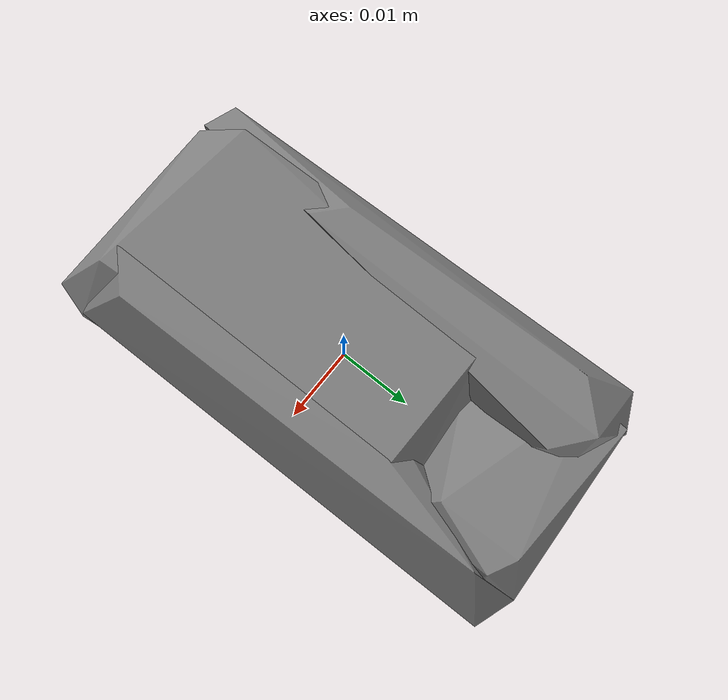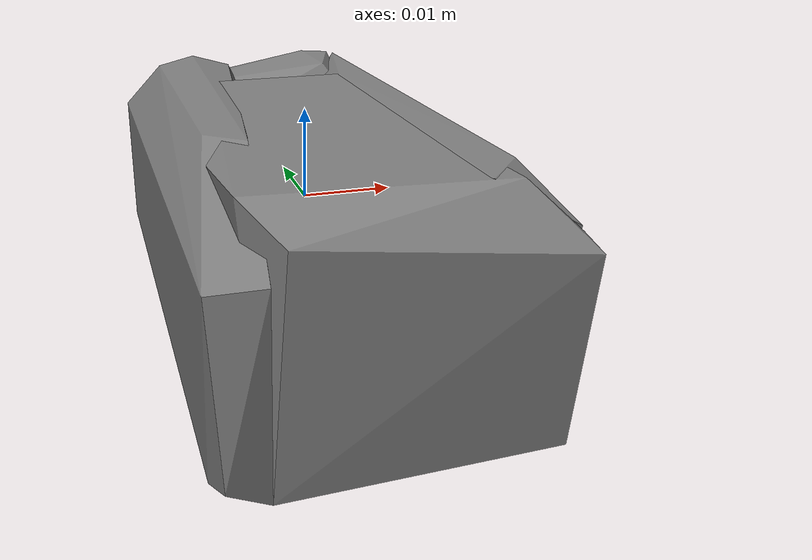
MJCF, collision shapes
<mujoco model="c_lego_duplo">
  <compiler angle="radian" />

  <asset>
    <mesh name="c_lego_duplo_visual_mesh" file="c_lego_duplo/textured.obj" />
    <mesh name="c_lego_duplo_collision_mesh_0" file="c_lego_duplo/textured_coacd_0.stl" />
    <mesh name="c_lego_duplo_collision_mesh_1" file="c_lego_duplo/textured_coacd_1.stl" />
    <mesh name="c_lego_duplo_collision_mesh_2" file="c_lego_duplo/textured_coacd_2.stl" />
    <mesh name="c_lego_duplo_collision_mesh_3" file="c_lego_duplo/textured_coacd_3.stl" />
    <texture name="c_lego_duplo_texture" type="2d" file="c_lego_duplo/texture_map.png" />
    <material name="c_lego_duplo_material" texture="c_lego_duplo_texture" />
  </asset>

  <worldbody>
    <body name="c_lego_duplo" pos="0 0 0" euler="0 0 0">
      <freejoint name="c_lego_duplo_joint" />
      <geom name="c_lego_duplo_visual_geom" type="mesh" mesh="c_lego_duplo_visual_mesh" material="c_lego_duplo_material" pos="0.013173349121726697 0.022850899210760046 -0.012672119612308666" euler="0 0 0" contype="0" conaffinity="0" group="0" />
      <geom name="c_lego_duplo_collision_geom_0" type="mesh" mesh="c_lego_duplo_collision_mesh_0" pos="0.013173349121726697 0.022850899210760046 -0.012672119612308666" euler="0 0 0" contype="1" conaffinity="1" group="3" />
      <geom name="c_lego_duplo_collision_geom_1" type="mesh" mesh="c_lego_duplo_collision_mesh_1" pos="0.013173349121726697 0.022850899210760046 -0.012672119612308666" euler="0 0 0" contype="1" conaffinity="1" group="3" />
      <geom name="c_lego_duplo_collision_geom_2" type="mesh" mesh="c_lego_duplo_collision_mesh_2" pos="0.013173349121726697 0.022850899210760046 -0.012672119612308666" euler="0 0 0" contype="1" conaffinity="1" group="3" />
      <geom name="c_lego_duplo_collision_geom_3" type="mesh" mesh="c_lego_duplo_collision_mesh_3" pos="0.013173349121726697 0.022850899210760046 -0.012672119612308666" euler="0 0 0" contype="1" conaffinity="1" group="3" />
      <inertial pos="0 0 0" euler="0 0 0" mass="0.0372" diaginertia="0.001 0.001 0.001" />
    </body>
  </worldbody>
</mujoco>
